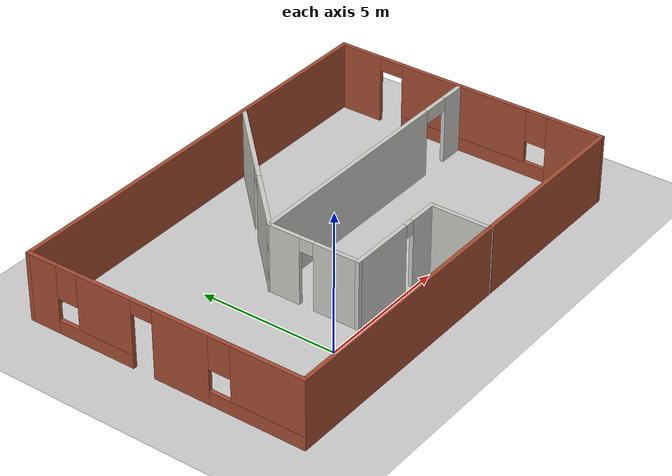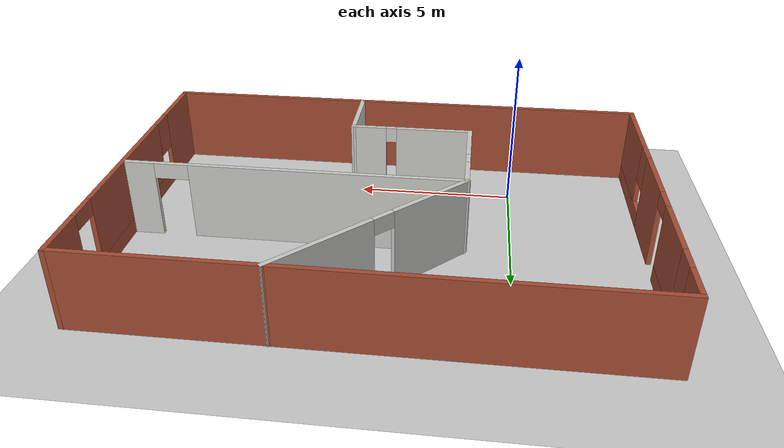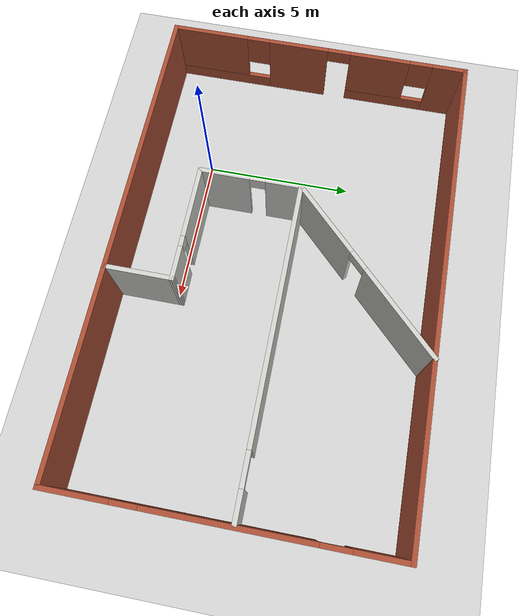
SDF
<sdf version="1.6">
 <world name="default">
  <light name="sun" type="directional">
   <pose>0 0 10 0 -0 0</pose>
   <diffuse>0.8 0.8 0.8 1</diffuse>
   <specular>0.2 0.2 0.2 1</specular>
   <attenuation>
    <range>1000</range>
    <constant>0.9</constant>
    <linear>0.01</linear>
    <quadratic>0.001</quadratic>
   </attenuation>
   <direction>-0.5 0.1 -0.9</direction>
  </light>
  <model name="ground_plane">
   <static>1</static>
   <link name="link">
    <collision name="collision">
     <geometry><plane><normal>0 0 1</normal><size>100 100</size></plane></geometry>
     <surface>
      <contact><collide_bitmask>65535</collide_bitmask></contact>
      <friction><ode><mu>100</mu><mu2>50</mu2></ode></friction>
     </surface>
    </collision>
    <visual name="visual">
     <cast_shadows>0</cast_shadows>
     <geometry><plane><normal>0 0 1</normal><size>100 100</size></plane></geometry>
     <material>
      <script><uri>file://media/materials/scripts/gazebo.material</uri><name>Gazebo/Grey</name></script>
     </material>
    </visual>
   </link>
  </model>
  <gravity>0 0 -9.8</gravity>
  <magnetic_field>6e-06 2.3e-05 -4.2e-05</magnetic_field>
  <atmosphere type="adiabatic"/>
  <physics name="default_physics" default="0" type="ode">
   <max_step_size>0.001</max_step_size>
   <real_time_factor>1</real_time_factor>
   <real_time_update_rate>1000</real_time_update_rate>
  </physics>
  <scene><ambient>0.4 0.4 0.4 1</ambient><background>0.7 0.7 0.7 1</background><shadows>1</shadows></scene>
  <spherical_coordinates>
   <surface_model>EARTH_WGS84</surface_model>
   <latitude_deg>0</latitude_deg>
   <longitude_deg>0</longitude_deg>
   <elevation>0</elevation>
   <heading_deg>0</heading_deg>
  </spherical_coordinates>
  <model name="cos.world">
   <pose>3.88174 3.17618 0 0 -0 0</pose>
   <link name="Wall_10">
    <pose>-0.543681 -3.0341 0 0 -0 3.14159</pose>
    <visual name="Wall_10_Visual_0">
     <pose>-1.41819 0 1.25 0 -0 0</pose>
     <geometry><box><size>1.16362 0.15 2.5</size></box></geometry>
     <material>
      <script><uri>file://media/materials/scripts/gazebo.material</uri><name>Gazebo/CeilingTiled</name></script>
      <ambient>1 1 1 1</ambient>
     </material>
     <meta><layer>0</layer></meta>
    </visual>
    <collision name="Wall_10_Collision_0">
     <geometry><box><size>1.16362 0.15 2.5</size></box></geometry>
     <pose>-1.41819 0 1.25 0 -0 0</pose>
    </collision>
    <visual name="Wall_10_Visual_1">
     <pose>0.756812 0 1.25 0 -0 0</pose>
     <geometry><box><size>2.48638 0.15 2.5</size></box></geometry>
     <material>
      <script><uri>file://media/materials/scripts/gazebo.material</uri><name>Gazebo/CeilingTiled</name></script>
      <ambient>1 1 1 1</ambient>
     </material>
     <meta><layer>0</layer></meta>
    </visual>
    <collision name="Wall_10_Collision_1">
     <geometry><box><size>2.48638 0.15 2.5</size></box></geometry>
     <pose>0.756812 0 1.25 0 -0 0</pose>
    </collision>
    <visual name="Wall_10_Visual_2">
     <pose>-0.661377 0 2.25 0 -0 0</pose>
     <geometry><box><size>0.35 0.15 0.5</size></box></geometry>
     <material>
      <script><uri>file://media/materials/scripts/gazebo.material</uri><name>Gazebo/CeilingTiled</name></script>
      <ambient>1 1 1 1</ambient>
     </material>
     <meta><layer>0</layer></meta>
    </visual>
    <collision name="Wall_10_Collision_2">
     <geometry><box><size>0.35 0.15 0.5</size></box></geometry>
     <pose>-0.661377 0 2.25 0 -0 0</pose>
    </collision>
   </link>
   <link name="Wall_16">
    <pose>-2.46868 -1.35911 0 0 -0 1.5708</pose>
    <visual name="Wall_16_Visual_0">
     <pose>-0.889096 0 1.25 0 -0 0</pose>
     <geometry><box><size>1.72181 0.15 2.5</size></box></geometry>
     <material>
      <script><uri>file://media/materials/scripts/gazebo.material</uri><name>Gazebo/CeilingTiled</name></script>
      <ambient>1 1 1 1</ambient>
     </material>
     <meta><layer>0</layer></meta>
    </visual>
    <collision name="Wall_16_Collision_0">
     <geometry><box><size>1.72181 0.15 2.5</size></box></geometry>
     <pose>-0.889096 0 1.25 0 -0 0</pose>
    </collision>
    <visual name="Wall_16_Visual_1">
     <pose>1.1234 0 1.25 0 -0 0</pose>
     <geometry><box><size>1.25319 0.15 2.5</size></box></geometry>
     <material>
      <script><uri>file://media/materials/scripts/gazebo.material</uri><name>Gazebo/CeilingTiled</name></script>
      <ambient>1 1 1 1</ambient>
     </material>
     <meta><layer>0</layer></meta>
    </visual>
    <collision name="Wall_16_Collision_1">
     <geometry><box><size>1.25319 0.15 2.5</size></box></geometry>
     <pose>1.1234 0 1.25 0 -0 0</pose>
    </collision>
    <visual name="Wall_16_Visual_2">
     <pose>0.234308 0 2.25 0 -0 0</pose>
     <geometry><box><size>0.525 0.15 0.5</size></box></geometry>
     <material>
      <script><uri>file://media/materials/scripts/gazebo.material</uri><name>Gazebo/CeilingTiled</name></script>
      <ambient>1 1 1 1</ambient>
     </material>
     <meta><layer>0</layer></meta>
    </visual>
    <collision name="Wall_16_Collision_2">
     <geometry><box><size>0.525 0.15 0.5</size></box></geometry>
     <pose>0.234308 0 2.25 0 -0 0</pose>
    </collision>
   </link>
   <link name="Wall_17">
    <pose>-0.046841 2.73774 0 0 -0 0.785398</pose>
    <visual name="Wall_17_Visual_0">
     <pose>-2.08602 0 1.25 0 -0 0</pose>
     <geometry><box><size>2.82796 0.15 2.5</size></box></geometry>
     <material>
      <script><uri>file://media/materials/scripts/gazebo.material</uri><name>Gazebo/CeilingTiled</name></script>
      <ambient>1 1 1 1</ambient>
     </material>
     <meta><layer>0</layer></meta>
    </visual>
    <collision name="Wall_17_Collision_0">
     <geometry><box><size>2.82796 0.15 2.5</size></box></geometry>
     <pose>-2.08602 0 1.25 0 -0 0</pose>
    </collision>
    <visual name="Wall_17_Visual_1">
     <pose>1.76398 0 1.25 0 -0 0</pose>
     <geometry><box><size>3.47204 0.15 2.5</size></box></geometry>
     <material>
      <script><uri>file://media/materials/scripts/gazebo.material</uri><name>Gazebo/CeilingTiled</name></script>
      <ambient>1 1 1 1</ambient>
     </material>
     <meta><layer>0</layer></meta>
    </visual>
    <collision name="Wall_17_Collision_1">
     <geometry><box><size>3.47204 0.15 2.5</size></box></geometry>
     <pose>1.76398 0 1.25 0 -0 0</pose>
    </collision>
    <visual name="Wall_17_Visual_2">
     <pose>-0.32204 0 2.25 0 -0 0</pose>
     <geometry><box><size>0.7 0.15 0.5</size></box></geometry>
     <material>
      <script><uri>file://media/materials/scripts/gazebo.material</uri><name>Gazebo/CeilingTiled</name></script>
      <ambient>1 1 1 1</ambient>
     </material>
     <meta><layer>0</layer></meta>
    </visual>
    <collision name="Wall_17_Collision_2">
     <geometry><box><size>0.7 0.15 0.5</size></box></geometry>
     <pose>-0.32204 0 2.25 0 -0 0</pose>
    </collision>
   </link>
   <link name="Wall_18">
    <collision name="Wall_18_Collision">
     <geometry><box><size>10.5 0.15 2.5</size></box></geometry>
     <pose>0 0 1.25 0 -0 0</pose>
    </collision>
    <visual name="Wall_18_Visual">
     <pose>0 0 1.25 0 -0 0</pose>
     <geometry><box><size>10.5 0.15 2.5</size></box></geometry>
     <material>
      <script><uri>file://media/materials/scripts/gazebo.material</uri><name>Gazebo/Bricks</name></script>
      <ambient>1 1 1 1</ambient>
     </material>
     <meta><layer>0</layer></meta>
    </visual>
    <pose>-2.8 5.15958 0 0 -0 3.14159</pose>
   </link>
   <link name="Wall_19">
    <pose>-7.975 -0.015424 0 0 -0 -1.5708</pose>
    <visual name="Wall_19_Visual_0">
     <pose>-4.64643 0 1.25 0 -0 0</pose>
     <geometry><box><size>1.20715 0.15 2.5</size></box></geometry>
     <material>
      <script><uri>file://media/materials/scripts/gazebo.material</uri><name>Gazebo/Bricks</name></script>
      <ambient>1 1 1 1</ambient>
     </material>
     <meta><layer>0</layer></meta>
    </visual>
    <collision name="Wall_19_Collision_0">
     <geometry><box><size>1.20715 0.15 2.5</size></box></geometry>
     <pose>-4.64643 0 1.25 0 -0 0</pose>
    </collision>
    <visual name="Wall_19_Visual_1">
     <pose>0.716609 0 1.25 0 -0 0</pose>
     <geometry><box><size>2.09448 0.15 2.5</size></box></geometry>
     <material>
      <script><uri>file://media/materials/scripts/gazebo.material</uri><name>Gazebo/Bricks</name></script>
      <ambient>1 1 1 1</ambient>
     </material>
     <meta><layer>0</layer></meta>
    </visual>
    <collision name="Wall_19_Collision_1">
     <geometry><box><size>2.09448 0.15 2.5</size></box></geometry>
     <pose>0.716609 0 1.25 0 -0 0</pose>
    </collision>
    <visual name="Wall_19_Visual_2">
     <pose>-2.58657 0 0.25 0 -0 0</pose>
     <geometry><box><size>2.91257 0.15 0.5</size></box></geometry>
     <material>
      <script><uri>file://media/materials/scripts/gazebo.material</uri><name>Gazebo/Bricks</name></script>
      <ambient>1 1 1 1</ambient>
     </material>
     <meta><layer>0</layer></meta>
    </visual>
    <collision name="Wall_19_Collision_2">
     <geometry><box><size>2.91257 0.15 0.5</size></box></geometry>
     <pose>-2.58657 0 0.25 0 -0 0</pose>
    </collision>
    <visual name="Wall_19_Visual_3">
     <pose>3.50692 0 0.25 0 -0 0</pose>
     <geometry><box><size>3.48615 0.15 0.5</size></box></geometry>
     <material>
      <script><uri>file://media/materials/scripts/gazebo.material</uri><name>Gazebo/Bricks</name></script>
      <ambient>1 1 1 1</ambient>
     </material>
     <meta><layer>0</layer></meta>
    </visual>
    <collision name="Wall_19_Collision_3">
     <geometry><box><size>3.48615 0.15 0.5</size></box></geometry>
     <pose>3.50692 0 0.25 0 -0 0</pose>
    </collision>
    <visual name="Wall_19_Visual_4">
     <pose>-2.18657 0 1.5 0 -0 0</pose>
     <geometry><box><size>2.11258 0.15 2</size></box></geometry>
     <material>
      <script><uri>file://media/materials/scripts/gazebo.material</uri><name>Gazebo/Bricks</name></script>
      <ambient>1 1 1 1</ambient>
     </material>
     <meta><layer>0</layer></meta>
    </visual>
    <collision name="Wall_19_Collision_4">
     <geometry><box><size>2.11258 0.15 2</size></box></geometry>
     <pose>-2.18657 0 1.5 0 -0 0</pose>
    </collision>
    <visual name="Wall_19_Visual_5">
     <pose>-2.18657 0 1.5 0 -0 0</pose>
     <geometry><box><size>2.11258 0.15 2</size></box></geometry>
     <material>
      <script><uri>file://media/materials/scripts/gazebo.material</uri><name>Gazebo/Bricks</name></script>
      <ambient>1 1 1 1</ambient>
     </material>
     <meta><layer>0</layer></meta>
    </visual>
    <collision name="Wall_19_Collision_5">
     <geometry><box><size>2.11258 0.15 2</size></box></geometry>
     <pose>-2.18657 0 1.5 0 -0 0</pose>
    </collision>
    <visual name="Wall_19_Visual_6">
     <pose>3.90692 0 1.5 0 -0 0</pose>
     <geometry><box><size>2.68615 0.15 2</size></box></geometry>
     <material>
      <script><uri>file://media/materials/scripts/gazebo.material</uri><name>Gazebo/Bricks</name></script>
      <ambient>1 1 1 1</ambient>
     </material>
     <meta><layer>0</layer></meta>
    </visual>
    <collision name="Wall_19_Collision_6">
     <geometry><box><size>2.68615 0.15 2</size></box></geometry>
     <pose>3.90692 0 1.5 0 -0 0</pose>
    </collision>
    <visual name="Wall_19_Visual_7">
     <pose>-3.64285 0 1.9 0 -0 0</pose>
     <geometry><box><size>0.8 0.15 1.2</size></box></geometry>
     <material>
      <script><uri>file://media/materials/scripts/gazebo.material</uri><name>Gazebo/Bricks</name></script>
      <ambient>1 1 1 1</ambient>
     </material>
     <meta><layer>0</layer></meta>
    </visual>
    <collision name="Wall_19_Collision_7">
     <geometry><box><size>0.8 0.15 1.2</size></box></geometry>
     <pose>-3.64285 0 1.9 0 -0 0</pose>
    </collision>
    <visual name="Wall_19_Visual_8">
     <pose>2.16385 0 1.9 0 -0 0</pose>
     <geometry><box><size>0.8 0.15 1.2</size></box></geometry>
     <material>
      <script><uri>file://media/materials/scripts/gazebo.material</uri><name>Gazebo/Bricks</name></script>
      <ambient>1 1 1 1</ambient>
     </material>
     <meta><layer>0</layer></meta>
    </visual>
    <collision name="Wall_19_Collision_8">
     <geometry><box><size>0.8 0.15 1.2</size></box></geometry>
     <pose>2.16385 0 1.9 0 -0 0</pose>
    </collision>
    <visual name="Wall_19_Visual_9">
     <pose>-0.730454 0 2.25 0 -0 0</pose>
     <geometry><box><size>0.79965 0.15 0.5</size></box></geometry>
     <material>
      <script><uri>file://media/materials/scripts/gazebo.material</uri><name>Gazebo/Bricks</name></script>
      <ambient>1 1 1 1</ambient>
     </material>
     <meta><layer>0</layer></meta>
    </visual>
    <collision name="Wall_19_Collision_9">
     <geometry><box><size>0.79965 0.15 0.5</size></box></geometry>
     <pose>-0.730454 0 2.25 0 -0 0</pose>
    </collision>
    <visual name="Wall_19_Visual_10">
     <pose>-0.730454 0 2.25 0 -0 0</pose>
     <geometry><box><size>0.79965 0.15 0.5</size></box></geometry>
     <material>
      <script><uri>file://media/materials/scripts/gazebo.material</uri><name>Gazebo/Bricks</name></script>
      <ambient>1 1 1 1</ambient>
     </material>
     <meta><layer>0</layer></meta>
    </visual>
    <collision name="Wall_19_Collision_10">
     <geometry><box><size>0.79965 0.15 0.5</size></box></geometry>
     <pose>-0.730454 0 2.25 0 -0 0</pose>
    </collision>
   </link>
   <link name="Wall_22">
    <collision name="Wall_22_Collision">
     <geometry><box><size>9.5 0.15 2.5</size></box></geometry>
     <pose>0 0 1.25 0 -0 0</pose>
    </collision>
    <visual name="Wall_22_Visual">
     <pose>0 0 1.25 0 -0 0</pose>
     <geometry><box><size>9.5 0.15 2.5</size></box></geometry>
     <material>
      <script><uri>file://media/materials/scripts/gazebo.material</uri><name>Gazebo/Bricks</name></script>
      <ambient>1 1 1 1</ambient>
     </material>
     <meta><layer>0</layer></meta>
    </visual>
    <pose>-3.3 -5.19042 0 0 -0 0</pose>
   </link>
   <link name="Wall_23">
    <collision name="Wall_23_Collision">
     <geometry><box><size>2.30633 0.15 2.5</size></box></geometry>
     <pose>0 0 1.25 0 -0 0</pose>
    </collision>
    <visual name="Wall_23_Visual">
     <pose>0 0 1.25 0 -0 0</pose>
     <geometry><box><size>2.30633 0.15 2.5</size></box></geometry>
     <material>
      <script><uri>file://media/materials/scripts/gazebo.material</uri><name>Gazebo/CeilingTiled</name></script>
      <ambient>1 1 1 1</ambient>
     </material>
     <meta><layer>0</layer></meta>
    </visual>
    <pose>1.37816 -4.11226 0 0 -0 1.56787</pose>
   </link>
   <link name="Wall_25">
    <collision name="Wall_25_Collision">
     <geometry><box><size>6.75 0.15 2.5</size></box></geometry>
     <pose>0 0 1.25 0 -0 0</pose>
    </collision>
    <visual name="Wall_25_Visual">
     <pose>0 0 1.25 0 -0 0</pose>
     <geometry><box><size>6.75 0.15 2.5</size></box></geometry>
     <material>
      <script><uri>file://media/materials/scripts/gazebo.material</uri><name>Gazebo/Bricks</name></script>
      <ambient>1 1 1 1</ambient>
     </material>
     <meta><layer>0</layer></meta>
    </visual>
    <pose>4.675 -5.19042 0 0 -0 0</pose>
   </link>
   <link name="Wall_26">
    <pose>7.975 -0.015424 0 0 -0 1.5708</pose>
    <visual name="Wall_26_Visual_0">
     <pose>-4.19551 0 1.25 0 -0 0</pose>
     <geometry><box><size>2.10898 0.15 2.5</size></box></geometry>
     <material>
      <script><uri>file://media/materials/scripts/gazebo.material</uri><name>Gazebo/Bricks</name></script>
      <ambient>1 1 1 1</ambient>
     </material>
     <meta><layer>0</layer></meta>
    </visual>
    <collision name="Wall_26_Collision_0">
     <geometry><box><size>2.10898 0.15 2.5</size></box></geometry>
     <pose>-4.19551 0 1.25 0 -0 0</pose>
    </collision>
    <visual name="Wall_26_Visual_1">
     <pose>4.40604 0 1.25 0 -0 0</pose>
     <geometry><box><size>1.68792 0.15 2.5</size></box></geometry>
     <material>
      <script><uri>file://media/materials/scripts/gazebo.material</uri><name>Gazebo/Bricks</name></script>
      <ambient>1 1 1 1</ambient>
     </material>
     <meta><layer>0</layer></meta>
    </visual>
    <collision name="Wall_26_Collision_1">
     <geometry><box><size>1.68792 0.15 2.5</size></box></geometry>
     <pose>4.40604 0 1.25 0 -0 0</pose>
    </collision>
    <visual name="Wall_26_Visual_2">
     <pose>-0.23947 0 0.25 0 -0 0</pose>
     <geometry><box><size>5.8031 0.15 0.5</size></box></geometry>
     <material>
      <script><uri>file://media/materials/scripts/gazebo.material</uri><name>Gazebo/Bricks</name></script>
      <ambient>1 1 1 1</ambient>
     </material>
     <meta><layer>0</layer></meta>
    </visual>
    <collision name="Wall_26_Collision_2">
     <geometry><box><size>5.8031 0.15 0.5</size></box></geometry>
     <pose>-0.23947 0 0.25 0 -0 0</pose>
    </collision>
    <visual name="Wall_26_Visual_3">
     <pose>0.16053 0 1.5 0 -0 0</pose>
     <geometry><box><size>5.0031 0.15 2</size></box></geometry>
     <material>
      <script><uri>file://media/materials/scripts/gazebo.material</uri><name>Gazebo/Bricks</name></script>
      <ambient>1 1 1 1</ambient>
     </material>
     <meta><layer>0</layer></meta>
    </visual>
    <collision name="Wall_26_Collision_3">
     <geometry><box><size>5.0031 0.15 2</size></box></geometry>
     <pose>0.16053 0 1.5 0 -0 0</pose>
    </collision>
    <visual name="Wall_26_Visual_4">
     <pose>-2.74102 0 1.9 0 -0 0</pose>
     <geometry><box><size>0.8 0.15 1.2</size></box></geometry>
     <material>
      <script><uri>file://media/materials/scripts/gazebo.material</uri><name>Gazebo/Bricks</name></script>
      <ambient>1 1 1 1</ambient>
     </material>
     <meta><layer>0</layer></meta>
    </visual>
    <collision name="Wall_26_Collision_4">
     <geometry><box><size>0.8 0.15 1.2</size></box></geometry>
     <pose>-2.74102 0 1.9 0 -0 0</pose>
    </collision>
    <visual name="Wall_26_Visual_5">
     <pose>3.11208 0 2.25 0 -0 0</pose>
     <geometry><box><size>0.9 0.15 0.5</size></box></geometry>
     <material>
      <script><uri>file://media/materials/scripts/gazebo.material</uri><name>Gazebo/Bricks</name></script>
      <ambient>1 1 1 1</ambient>
     </material>
     <meta><layer>0</layer></meta>
    </visual>
    <collision name="Wall_26_Collision_5">
     <geometry><box><size>0.9 0.15 0.5</size></box></geometry>
     <pose>3.11208 0 2.25 0 -0 0</pose>
    </collision>
   </link>
   <link name="Wall_27">
    <collision name="Wall_27_Collision">
     <geometry><box><size>5.75 0.15 2.5</size></box></geometry>
     <pose>0 0 1.25 0 -0 0</pose>
    </collision>
    <visual name="Wall_27_Visual">
     <pose>0 0 1.25 0 -0 0</pose>
     <geometry><box><size>5.75 0.15 2.5</size></box></geometry>
     <material>
      <script><uri>file://media/materials/scripts/gazebo.material</uri><name>Gazebo/Bricks</name></script>
      <ambient>1 1 1 1</ambient>
     </material>
     <meta><layer>0</layer></meta>
    </visual>
    <pose>5.175 5.15958 0 0 -0 3.14159</pose>
   </link>
   <link name="Wall_29">
    <pose>2.70632 0.315895 0 0 -0 0</pose>
    <visual name="Wall_29_Visual_0">
     <pose>-1.01572 0 1.25 0 -0 0</pose>
     <geometry><box><size>8.46855 0.15 2.5</size></box></geometry>
     <material>
      <script><uri>file://media/materials/scripts/gazebo.material</uri><name>Gazebo/CeilingTiled</name></script>
      <ambient>1 1 1 1</ambient>
     </material>
     <meta><layer>0</layer></meta>
    </visual>
    <collision name="Wall_29_Collision_0">
     <geometry><box><size>8.46855 0.15 2.5</size></box></geometry>
     <pose>-1.01572 0 1.25 0 -0 0</pose>
    </collision>
    <visual name="Wall_29_Visual_1">
     <pose>4.75928 0 1.25 0 -0 0</pose>
     <geometry><box><size>0.981446 0.15 2.5</size></box></geometry>
     <material>
      <script><uri>file://media/materials/scripts/gazebo.material</uri><name>Gazebo/CeilingTiled</name></script>
      <ambient>1 1 1 1</ambient>
     </material>
     <meta><layer>0</layer></meta>
    </visual>
    <collision name="Wall_29_Collision_1">
     <geometry><box><size>0.981446 0.15 2.5</size></box></geometry>
     <pose>4.75928 0 1.25 0 -0 0</pose>
    </collision>
    <visual name="Wall_29_Visual_2">
     <pose>3.74355 0 2.25 0 -0 0</pose>
     <geometry><box><size>1.05 0.15 0.5</size></box></geometry>
     <material>
      <script><uri>file://media/materials/scripts/gazebo.material</uri><name>Gazebo/CeilingTiled</name></script>
      <ambient>1 1 1 1</ambient>
     </material>
     <meta><layer>0</layer></meta>
    </visual>
    <collision name="Wall_29_Collision_2">
     <geometry><box><size>1.05 0.15 0.5</size></box></geometry>
     <pose>3.74355 0 2.25 0 -0 0</pose>
    </collision>
   </link>
   <static>1</static>
  </model>
 </world>
</sdf>
